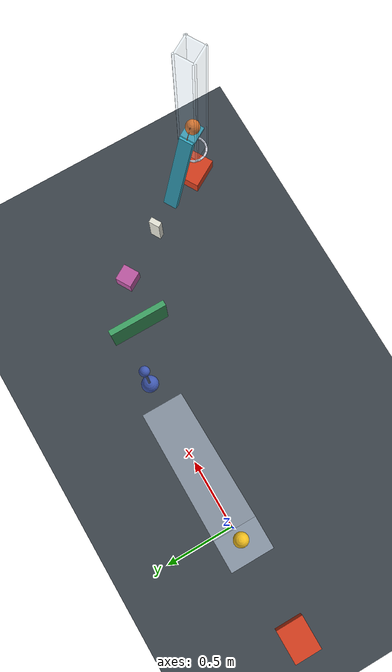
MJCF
<mujoco model="revised_chain_with_impact_clearance">
  <compiler angle="degree" autolimits="true"/>
  <option timestep="0.002" gravity="0 0 -9.81" integrator="implicitfast" solver="Newton" iterations="100" cone="elliptic" impratio="10" o_friction="0.68 0.68 0.005 0.002 0.002" o_solref="0.004 0.6901" o_solimp="0.95 0.99 0.001 0.5 2">
    <flag override="enable"/>
  </option>
  <size njmax="2000" nconmax="500"/>

  <!-- Global contact override sets sliding friction to 0.68. -->
  <!-- Contact damping ratio 0.6901 approximates restitution 0.05. -->
  <!-- Small rolling friction dissipates residual ball motion. -->
  <!-- All initial velocities are zero; there are no motors or timed controls. -->

  <worldbody>
    <light name="main_light" pos="1 -1 5" dir="0 0 -1" diffuse="0.9 0.9 0.9"/>
    <geom name="floor" type="plane" pos="0 0 0" size="6 6 0.1" condim="6" friction="0.68 0.005 0.002" rgba="0.24 0.27 0.30 1"/>

    <site name="cart1_spring_anchor" pos="-0.745 0 0.552020143" size="0.004" rgba="0.85 0.35 0.12 1"/>
    <site name="pendulum1_spring_anchor" pos="1.099692621 0 0.16" size="0.004" rgba="0.85 0.35 0.12 1"/>
    <site name="door1_spring_anchor" pos="1.501086426 -0.05 0.165" size="0.004" rgba="0.85 0.35 0.12 1"/>
    <site name="lever1_spring_anchor" pos="2.304221 -1.021070 0.760631115" size="0.004" rgba="0.85 0.35 0.12 1"/>

    <!-- Suspended axial slide avoids floor friction on cart1. -->
    <body name="cart1" pos="-0.735 0 0.552020143">
      <joint name="cart1_slide" type="slide" axis="1 0 0" damping="0.20" limited="true" range="0 0.72" solreflimit="0.004 1" solimplimit="0.99 0.999 0.0001"/>
      <geom name="cart1_box" type="box" size="0.11 0.09 0.05" mass="0.50" condim="6" friction="0.68 0.005 0.002" rgba="0.85 0.25 0.12 1"/>
      <site name="cart1_spring_site" pos="0 0 0" size="0.004" rgba="0.85 0.35 0.12 1"/>
    </body>

    <!-- Inclined surface length 1.00 m, width 0.30 m, angle 20 degrees. -->
    <!-- Low surface edge is at x=0.939692621, z=0.15. -->
    <body name="ramp1" pos="0 0 0">
      <geom name="ramp1_incline" type="box" pos="0.466426109 0 0.311613145" euler="0 20 0" size="0.50 0.15 0.01" condim="6" friction="0.68 0.005 0.002" rgba="0.55 0.60 0.66 1"/>
      <geom name="ramp1_staging_ledge" type="box" pos="-0.11 0 0.482020143" size="0.11 0.15 0.01" condim="6" friction="0.68 0.005 0.002" rgba="0.55 0.60 0.66 1"/>
    </body>

    <!-- Flat ledge prevents ball1 rolling before cart1 arrives. -->
    <!-- Initial cart-face to ball-surface separation is 0.50 m. -->
    <body name="ball1" pos="-0.075 0 0.542020143">
      <freejoint name="ball1_free"/>
      <geom name="ball1_sphere" type="sphere" size="0.05" mass="0.20" condim="6" friction="0.68 0.005 0.002" rgba="0.95 0.75 0.12 1"/>
    </body>

    <!-- Bob near surface is 0.10 m beyond the low ramp edge. -->
    <!-- Pivot-to-bob-centre length is 0.50 m; total rigid-body mass is 0.35 kg. -->
    <!-- The pendulum has no stop at its nominal 40-degree door contact. -->
    <body name="pendulum1" pos="1.099692621 0 0.66">
      <joint name="pendulum1_hinge" type="hinge" axis="0 -1 0" damping="0.04" frictionloss="0.001" limited="true" range="0 85" solreflimit="0.004 1" solimplimit="0.99 0.999 0.0001"/>
      <geom name="pendulum1_hub" type="sphere" size="0.035" mass="0.305" condim="6" friction="0.68 0.005 0.002" rgba="0.25 0.35 0.70 1"/>
      <geom name="pendulum1_rod" type="capsule" fromto="0 0 0 0 0 -0.50" size="0.008" mass="0.005" condim="6" friction="0.68 0.005 0.002" rgba="0.35 0.40 0.50 1"/>
      <geom name="pendulum1_bob" type="sphere" pos="0 0 -0.50" size="0.06" mass="0.040" condim="6" friction="0.68 0.005 0.002" rgba="0.25 0.35 0.70 1"/>
      <site name="pendulum1_spring_site" pos="0 0 -0.40" size="0.004" rgba="0.85 0.35 0.12 1"/>
    </body>

    <!-- Initial panel face meets the bob's rightmost extent at 40 degrees. -->
    <!-- Door rotates clockwise viewed from above and stops at 70 degrees. -->
    <body name="door1" pos="1.501086426 -0.35 0.005">
      <joint name="door1_hinge" type="hinge" axis="0 0 -1" damping="0.04" frictionloss="0.002" limited="true" range="0 70" solreflimit="0.004 1" solimplimit="0.99 0.999 0.0001"/>
      <geom name="door1_panel" type="box" pos="0 0.21 0.16" size="0.02 0.21 0.16" mass="0.45" condim="6" friction="0.68 0.005 0.002" rgba="0.25 0.65 0.40 1"/>
      <site name="door1_spring_site" pos="0 0.20 0.16" size="0.004" rgba="0.85 0.35 0.12 1"/>
    </body>

    <!-- Nominal door/block contact begins at 60 degrees, leaving 10 degrees before the stop. -->
    <!-- Downstream direction is the impact tangent: (0.5, -0.866025403, 0). -->
    <body name="block1" pos="1.852855571 -0.239282032 0.06" euler="0 0 -60">
      <freejoint name="block1_free"/>
      <geom name="block1_cube" type="box" size="0.06 0.06 0.06" mass="0.35" condim="6" friction="0.68 0.005 0.002" rgba="0.75 0.35 0.65 1"/>
    </body>

    <!-- Initial face-to-face gap from block1 to domino1 is 0.32 m. -->
    <body name="domino1" pos="2.052855571 -0.585692193 0.12" euler="0 0 -60">
      <freejoint name="domino1_free"/>
      <geom name="domino1_box" type="box" size="0.02 0.04 0.12" mass="0.25" condim="6" friction="0.68 0.005 0.002" rgba="0.92 0.92 0.87 1"/>
    </body>

    <!-- Lever begins 65 degrees above horizontal, with its left end accessible to the domino. -->
    <!-- Geometry targets 0.18 m travel of the domino's upper front corner before contact. -->
    <!-- That target assumes tipping about its lower front edge rather than sliding. -->
    <body name="lever1" pos="2.219697 -0.874671 0.398108" xyaxes="0.211309131 -0.365998151 0.906307787 0.866025403 0.5 0">
      <inertial pos="0 0 0" mass="0.50" diaginertia="0.000483333 0.015066667 0.015416667"/>
      <joint name="lever1_hinge" type="hinge" axis="0 -1 0" damping="0.04" limited="true" range="0 45" solreflimit="0.004 1" solimplimit="0.99 0.999 0.0001"/>
      <geom name="lever1_beam" type="box" size="0.30 0.05 0.02" condim="6" friction="0.68 0.005 0.002" rgba="0.20 0.65 0.75 1"/>
      <geom name="lever1_launch_shelf" type="box" pos="0.320219 0 -0.062291" xyaxes="0.422618262 0 -0.906307787 0 1 0" size="0.065 0.055 0.008" condim="6" friction="0.68 0.005 0.002" rgba="0.20 0.65 0.75 1"/>
      <site name="lever1_spring_site" pos="0.30 0 0" size="0.004" rgba="0.85 0.35 0.12 1"/>
    </body>

    <body name="ball2" pos="2.320590 -1.049422 0.72">
      <freejoint name="ball2_free"/>
      <geom name="ball2_sphere" type="sphere" size="0.05" mass="0.20" contype="4" conaffinity="5" condim="6" friction="0.68 0.005 0.002" rgba="0.95 0.45 0.10 1"/>
    </body>

    <!-- Ring plane is 0.32 m below ball2's initial centre. -->
    <!-- Polygon chord compensation gives approximately 0.16 m minimum clear diameter. -->
    <!-- Transparent guides collide with ball2, but not with the launching lever. -->
    <body name="ring1" pos="2.320590 -1.049422 0.40">
      <geom name="ring1_segment_00" type="capsule" fromto="0.089724 0 0 0.082894 0.034336 0" size="0.008" contype="4" conaffinity="4" condim="6" friction="0.68 0.005 0.002" rgba="0.85 0.85 0.90 1"/>
      <geom name="ring1_segment_01" type="capsule" fromto="0.082894 0.034336 0 0.063444 0.063444 0" size="0.008" contype="4" conaffinity="4" condim="6" friction="0.68 0.005 0.002" rgba="0.85 0.85 0.90 1"/>
      <geom name="ring1_segment_02" type="capsule" fromto="0.063444 0.063444 0 0.034336 0.082894 0" size="0.008" contype="4" conaffinity="4" condim="6" friction="0.68 0.005 0.002" rgba="0.85 0.85 0.90 1"/>
      <geom name="ring1_segment_03" type="capsule" fromto="0.034336 0.082894 0 0 0.089724 0" size="0.008" contype="4" conaffinity="4" condim="6" friction="0.68 0.005 0.002" rgba="0.85 0.85 0.90 1"/>
      <geom name="ring1_segment_04" type="capsule" fromto="0 0.089724 0 -0.034336 0.082894 0" size="0.008" contype="4" conaffinity="4" condim="6" friction="0.68 0.005 0.002" rgba="0.85 0.85 0.90 1"/>
      <geom name="ring1_segment_05" type="capsule" fromto="-0.034336 0.082894 0 -0.063444 0.063444 0" size="0.008" contype="4" conaffinity="4" condim="6" friction="0.68 0.005 0.002" rgba="0.85 0.85 0.90 1"/>
      <geom name="ring1_segment_06" type="capsule" fromto="-0.063444 0.063444 0 -0.082894 0.034336 0" size="0.008" contype="4" conaffinity="4" condim="6" friction="0.68 0.005 0.002" rgba="0.85 0.85 0.90 1"/>
      <geom name="ring1_segment_07" type="capsule" fromto="-0.082894 0.034336 0 -0.089724 0 0" size="0.008" contype="4" conaffinity="4" condim="6" friction="0.68 0.005 0.002" rgba="0.85 0.85 0.90 1"/>
      <geom name="ring1_segment_08" type="capsule" fromto="-0.089724 0 0 -0.082894 -0.034336 0" size="0.008" contype="4" conaffinity="4" condim="6" friction="0.68 0.005 0.002" rgba="0.85 0.85 0.90 1"/>
      <geom name="ring1_segment_09" type="capsule" fromto="-0.082894 -0.034336 0 -0.063444 -0.063444 0" size="0.008" contype="4" conaffinity="4" condim="6" friction="0.68 0.005 0.002" rgba="0.85 0.85 0.90 1"/>
      <geom name="ring1_segment_10" type="capsule" fromto="-0.063444 -0.063444 0 -0.034336 -0.082894 0" size="0.008" contype="4" conaffinity="4" condim="6" friction="0.68 0.005 0.002" rgba="0.85 0.85 0.90 1"/>
      <geom name="ring1_segment_11" type="capsule" fromto="-0.034336 -0.082894 0 0 -0.089724 0" size="0.008" contype="4" conaffinity="4" condim="6" friction="0.68 0.005 0.002" rgba="0.85 0.85 0.90 1"/>
      <geom name="ring1_segment_12" type="capsule" fromto="0 -0.089724 0 0.034336 -0.082894 0" size="0.008" contype="4" conaffinity="4" condim="6" friction="0.68 0.005 0.002" rgba="0.85 0.85 0.90 1"/>
      <geom name="ring1_segment_13" type="capsule" fromto="0.034336 -0.082894 0 0.063444 -0.063444 0" size="0.008" contype="4" conaffinity="4" condim="6" friction="0.68 0.005 0.002" rgba="0.85 0.85 0.90 1"/>
      <geom name="ring1_segment_14" type="capsule" fromto="0.063444 -0.063444 0 0.082894 -0.034336 0" size="0.008" contype="4" conaffinity="4" condim="6" friction="0.68 0.005 0.002" rgba="0.85 0.85 0.90 1"/>
      <geom name="ring1_segment_15" type="capsule" fromto="0.082894 -0.034336 0 0.089724 0 0" size="0.008" contype="4" conaffinity="4" condim="6" friction="0.68 0.005 0.002" rgba="0.85 0.85 0.90 1"/>
      <geom name="ring1_guide_forward" type="box" pos="0.0315 -0.054560 0.6125" xyaxes="0.5 -0.866025403 0 0.866025403 0.5 0" size="0.006 0.075 0.5875" contype="4" conaffinity="4" condim="6" friction="0.68 0.005 0.002" rgba="0.65 0.80 0.90 0.18"/>
      <geom name="ring1_guide_backward" type="box" pos="-0.0315 0.054560 0.6125" xyaxes="0.5 -0.866025403 0 0.866025403 0.5 0" size="0.006 0.075 0.5875" contype="4" conaffinity="4" condim="6" friction="0.68 0.005 0.002" rgba="0.65 0.80 0.90 0.18"/>
      <geom name="ring1_guide_left" type="box" pos="0.054560 0.0315 0.6125" xyaxes="0.5 -0.866025403 0 0.866025403 0.5 0" size="0.075 0.006 0.5875" contype="4" conaffinity="4" condim="6" friction="0.68 0.005 0.002" rgba="0.65 0.80 0.90 0.18"/>
      <geom name="ring1_guide_right" type="box" pos="-0.054560 -0.0315 0.6125" xyaxes="0.5 -0.866025403 0 0.866025403 0.5 0" size="0.075 0.006 0.5875" contype="4" conaffinity="4" condim="6" friction="0.68 0.005 0.002" rgba="0.65 0.80 0.90 0.18"/>
    </body>

    <!-- At top contact, ball2 centre is z=0.15, 0.25 m below the ring plane. -->
    <body name="cart2" pos="2.320590 -1.049422 0.05" euler="0 0 -60">
      <joint name="cart2_slide" type="slide" axis="1 0 0" damping="0.20" limited="true" range="-0.5 0.5" solreflimit="0.004 1" solimplimit="0.99 0.999 0.0001"/>
      <geom name="cart2_box" type="box" size="0.11 0.09 0.05" mass="0.50" condim="6" friction="0.68 0.005 0.002" rgba="0.85 0.25 0.12 1"/>
    </body>
  </worldbody>

  <tendon>
    <!-- Initial length 0.01 m and relaxed minimum 0.21 m give 0.20 m compression. -->
    <!-- The spring disengages after decompression, allowing the cart to coast. -->
    <spatial name="cart1_axial_spring" stiffness="18" damping="0" springlength="0.21 2" width="0.003" rgba="0.85 0.35 0.12 1">
      <site site="cart1_spring_anchor"/>
      <site site="cart1_spring_site"/>
    </spatial>

    <!-- Additional passive energy stores, explicitly not specified by the brief. -->
    <!-- Initial collinearity gives zero spring torque; impacts initiate rotation. -->
    <spatial name="pendulum1_overcentre_spring" stiffness="30" damping="0" springlength="0.22 2" width="0.002" rgba="0.85 0.35 0.12 1">
      <site site="pendulum1_spring_anchor"/>
      <site site="pendulum1_spring_site"/>
    </spatial>
    <spatial name="door1_overcentre_spring" stiffness="95" damping="0" springlength="0.50 2" width="0.002" rgba="0.85 0.35 0.12 1">
      <site site="door1_spring_anchor"/>
      <site site="door1_spring_site"/>
    </spatial>
    <spatial name="lever1_overcentre_spring" stiffness="200" damping="0" springlength="0.35 2" width="0.002" rgba="0.85 0.35 0.12 1">
      <site site="lever1_spring_anchor"/>
      <site site="lever1_spring_site"/>
    </spatial>
  </tendon>

  <!-- Default key positions are the initial model poses; default velocities are zero. -->
  <keyframe>
    <key name="start" time="0"/>
  </keyframe>
</mujoco>
